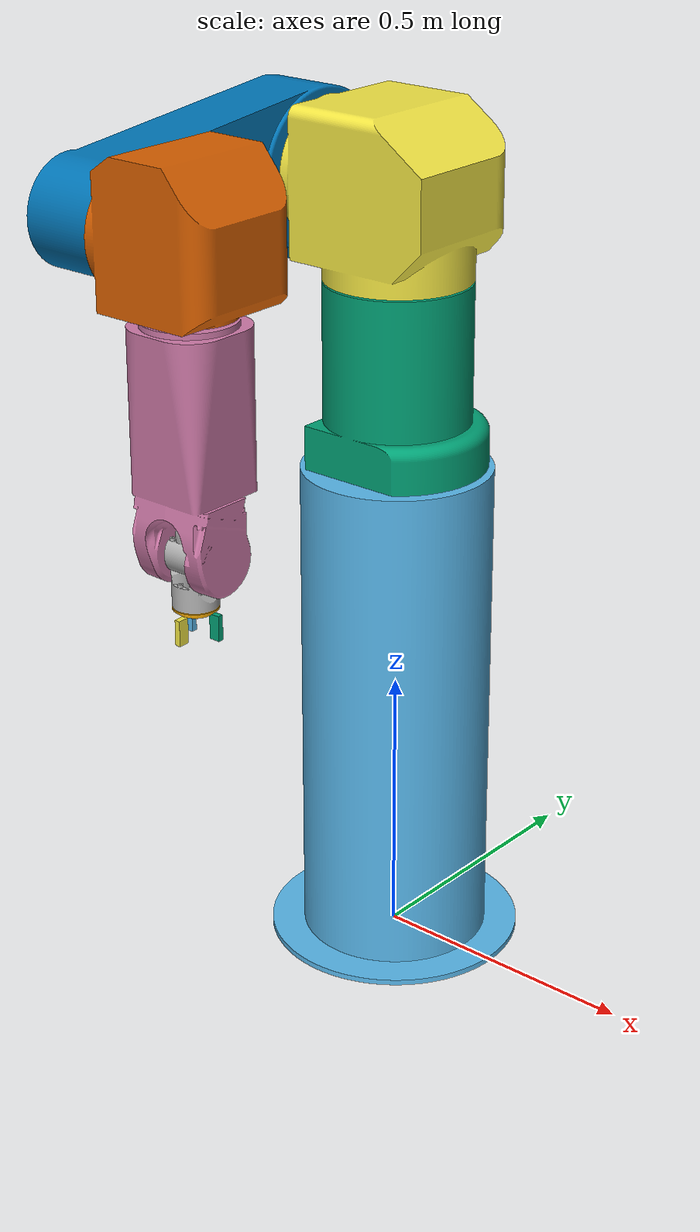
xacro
<?xml version="1.0"?>
<!-- Revolute-Revolute Manipulator -->
<robot name="rx90" xmlns:xacro="http://www.ros.org/wiki/xacro">

  <!-- Constants for robot dimensions -->

  <!-- Import all Gazebo-customization elements, including Gazebo colors -->
  <xacro:include filename="$(find rx90_description)/urdf/rx90.gazebo" />
  <!-- Import Rviz colors -->
  <xacro:include filename="$(find rx90_description)/urdf/materials.xacro" />

  <!-- Used for fixing robot to Gazebo 'base_link' -->
  <link name="world"/>

<!--BRAZOOOOOOOOOOOOOOOOOOOO-->

<!-- Joint 0 -->
   <link name="RIGHT/RX90_BARREL">
      <visual>
         <geometry>
            <mesh filename="package://rx90_description/meshes/stl/RX-90_BARREL.stl" scale="0.001 0.001 0.001" />
         </geometry>
          <origin rpy="${pi/2} 0 0" xyz="0 0 0" />
      </visual>
      <collision>
        <origin rpy="${pi/2} 0 0" xyz="0 0 0" />
            <geometry>
              <mesh filename="package://rx90_description/meshes/stl/RX-90_BARREL.stl" scale="0.001 0.001 0.001" />
            </geometry>
       </collision>
       <selfCollide>true</selfCollide>
	<inertial>
        <origin xyz="0 0 0" rpy="0 0 0" />
        <mass value="1" />
        <inertia
          ixx="1.0" ixy="0.0" ixz="0.0"
          iyy="1.0" iyz="0.0"
          izz="1.0" />
    </inertial>
   </link>
   <joint name="RIGHT/RX90_BARREL_JOINT" type="fixed">
      <parent link="world" />
      <child link="RIGHT/RX90_BARREL" />
      <origin rpy="0 0 0" xyz="0 0 0" />
   </joint>

    <link name="RIGHT/RX90_BASE">
       <visual>
	<origin rpy="${pi/2} 0 0" xyz="0 0 0" />
          <geometry>
             <mesh filename="package://rx90_description/meshes/stl/RX-90_BASE.stl" scale="0.001 0.001 0.001" />
          </geometry>
       </visual>
	<collision>
        <origin rpy="${pi/2} 0 0" xyz="0 0 0" />
            <geometry>
              <mesh filename="package://rx90_description/meshes/stl/RX-90_BASE.stl" scale="0.001 0.001 0.001" />
            </geometry>
       </collision>
       <selfCollide>true</selfCollide>
	<inertial>
        <origin xyz="0 0 0" rpy="0 0 0" />
        <mass value="1" />
        <inertia
          ixx="1.0" ixy="0.0" ixz="0.0"
          iyy="1.0" iyz="0.0"
          izz="1.0" />
    </inertial>
    </link>
    <joint name="RIGHT/RX90_BASE_JOINT" type="fixed">
       <parent link="RIGHT/RX90_BARREL" />
       <child link="RIGHT/RX90_BASE" />
       <origin rpy="0 0 0" xyz="0 0 1.005" />
    </joint>

    <link name="RIGHT/RX90_SHOULDER">
       <visual>
	<origin rpy="0 ${-pi/2} ${pi/2}" xyz="0.122 0 0" />
          <geometry>
             <mesh filename="package://rx90_description/meshes/stl/RX-90_SHOULDER.stl" scale="0.001 0.001 0.001" />
          </geometry>
       </visual>
	<collision>
        <origin rpy="0 ${-pi/2} ${pi/2}" xyz="0.122 0 0" />
            <geometry>
              <mesh filename="package://rx90_description/meshes/stl/RX-90_SHOULDER.stl" scale="0.001 0.001 0.001" />
            </geometry>
       </collision>
       <selfCollide>true</selfCollide>
	<inertial>
        <origin xyz="0 0 0" rpy="0 0 0" />
        <mass value="1" />
        <inertia
          ixx="1.0" ixy="0.0" ixz="0.0"
          iyy="1.0" iyz="0.0"
          izz="1.0" />
    </inertial>
    </link>
    <joint name="RIGHT/RX90_SHOULDER_JOINT" type="continuous">
       <parent link="RIGHT/RX90_BASE" />
       <child link="RIGHT/RX90_SHOULDER" />
       <origin rpy="0 ${pi/2} 0" xyz="0 0 0.41" />
    </joint>

<link name="RIGHT/RX90_ARM">
       <visual>
	<origin rpy="0 0 ${pi/2}" xyz="0 0 0" />
          <geometry>
             <mesh filename="package://rx90_description/meshes/stl/RX-90_ARM.stl" scale="0.001 0.001 0.001" />
          </geometry>
       </visual>
	<collision>
        <origin rpy="0 0 ${pi/2}" xyz="0 0 0" />
            <geometry>
              <mesh filename="package://rx90_description/meshes/stl/RX-90_ARM.stl" scale="0.001 0.001 0.001" />
            </geometry>
       </collision>
       <selfCollide>true</selfCollide>
	<inertial>
        <origin xyz="0 0 0" rpy="0 0 0" />
        <mass value="1" />
        <inertia
          ixx="1.0" ixy="0.0" ixz="0.0"
          iyy="1.0" iyz="0.0"
          izz="1.0" />
    </inertial>
    </link>
    <joint name="RIGHT/RX90_ARM_JOINT" type="continuous">
       <parent link="RIGHT/RX90_SHOULDER" />
       <child link="RIGHT/RX90_ARM" />
       <origin rpy="0 ${pi/2} ${pi/2}" xyz="0 0 -0.301" />
    </joint>

    <link name="RIGHT/RX90_ELBOW">
       <visual>
	<origin rpy="${-pi/2} ${-pi/2} ${-pi/2}" xyz="-0.021 0.14 0" />
          <geometry>
             <mesh filename="package://rx90_description/meshes/stl/RX-90_ELBOW.stl" scale="0.001 0.001 0.001" />
          </geometry>
       </visual>
	<collision>
        <origin rpy="${-pi/2} ${-pi/2} ${-pi/2}" xyz="-0.021 0.14 0" />
            <geometry>
              <mesh filename="package://rx90_description/meshes/stl/RX-90_ELBOW.stl" scale="0.001 0.001 0.001" />
            </geometry>
       </collision>
       <selfCollide>true</selfCollide>
	<inertial>
        <origin xyz="0 0 0" rpy="0 0 0" />
        <mass value="1" />
        <inertia
          ixx="1.0" ixy="0.0" ixz="0.0"
          iyy="1.0" iyz="0.0"
          izz="1.0" />
    </inertial>
    </link>
    <joint name="RIGHT/RX90_ELBOW_JOINT" type="continuous">
       <parent link="RIGHT/RX90_ARM" />
       <child link="RIGHT/RX90_ELBOW" />
       <origin rpy="0 0 0" xyz="-0.255 0 -0.46" />
    </joint>

  <link name="RIGHT/RX90_FOREARM">
       <visual>
	<origin rpy="${pi} ${-pi/2} 0" xyz="0.355 0.1 -0.05" />
          <geometry>
             <mesh filename="package://rx90_description/meshes/stl/RX-90_FOREARM.stl" scale="0.001 0.001 0.001" />
          </geometry>
       </visual>
	<collision>
        <origin rpy="${pi} ${-pi/2} 0" xyz="0.355 0.1 -0.05" />
            <geometry>
              <mesh filename="package://rx90_description/meshes/stl/RX-90_FOREARM.stl" scale="0.001 0.001 0.001" />
            </geometry>
       </collision>
       <selfCollide>true</selfCollide>
	<inertial>
        <origin xyz="0 0 0" rpy="0 0 0" />
        <mass value="1" />
        <inertia
          ixx="1.0" ixy="0.0" ixz="0.0"
          iyy="1.0" iyz="0.0"
          izz="1.0" />
    </inertial>
    </link>
    <joint name="RIGHT/RX90_FOREARM_JOINT" type="continuous">
       <parent link="RIGHT/RX90_ELBOW" />
       <child link="RIGHT/RX90_FOREARM" />
       <origin rpy="0 0 ${-pi/2}" xyz="0 0 0" />
    </joint>

      <link name="RIGHT/RX90_WRIST">
       <visual>
	<origin rpy="${pi/2} 0 ${-pi/2}" xyz="-0.007 0 -0.01" />
          <geometry>
             <mesh filename="package://rx90_description/meshes/stl/RX-90_WRIST.stl" scale="0.001 0.001 0.001" />
          </geometry>
       </visual>
	<collision>
        <origin rpy="${pi/2} 0 ${-pi/2}" xyz="-0.007 0 -0.01" />
            <geometry>
              <mesh filename="package://rx90_description/meshes/stl/RX-90_WRIST.stl" scale="0.001 0.001 0.001" />
            </geometry>
       </collision>
       <selfCollide>true</selfCollide>
	<inertial>
        <origin xyz="0 0 0" rpy="0 0 0" />
        <mass value="1" />
        <inertia
          ixx="1.0" ixy="0.0" ixz="0.0"
          iyy="1.0" iyz="0.0"
          izz="1.0" />
    </inertial>
    </link>
    <joint name="RIGHT/RX90_WRIST_JOINT" type="continuous">
       <parent link="RIGHT/RX90_FOREARM" />
       <child link="RIGHT/RX90_WRIST" />
       <origin rpy="0 0 ${pi/2}" xyz="0.52 0 0" />
    </joint>

          <link name="RIGHT/RX90_FLANGE">
       <visual>
	<origin rpy="0 ${pi/2} 0" xyz="0 0 0" />
          <geometry>
             <mesh filename="package://rx90_description/meshes/stl/RX-90_FLANGE.stl" scale="0.001 0.001 0.001" />
          </geometry>
       </visual>
	<collision>
        <origin rpy="0 ${pi/2} 0" xyz="0 0 -0.009" />
            <geometry>
              <mesh filename="package://rx90_description/meshes/stl/RX-90_FLANGE.stl" scale="0.001 0.001 0.001" />
            </geometry>
       </collision>
       <selfCollide>true</selfCollide>
	<inertial>
        <origin xyz="0 0 0" rpy="0 0 0" />
        <mass value="1" />
        <inertia
          ixx="1.0" ixy="0.0" ixz="0.0"
          iyy="1.0" iyz="0.0"
          izz="1.0" />
    </inertial>
    </link>
    <joint name="RIGHT/RX90_FLANGE_JOINT" type="continuous">
       <parent link="RIGHT/RX90_WRIST" />
       <child link="RIGHT/RX90_FLANGE" />
       <origin rpy="0 0 ${-pi/2}" xyz="-0.006 -0.1015 -0.009" />
    </joint>

          <link name="RIGHT/RX90_LGRIPPER">
       <visual>
	<origin rpy="0 0 0" xyz="0 0 0" />
          <geometry>
            <box size="0.02 0.045 0.01"/>
          </geometry>
       </visual>
	<collision>
        <origin rpy="0 0 0" xyz="0 0 0" />
            <geometry>
              <box size="0.02 0.045 0.01"/>
            </geometry>
       </collision>
       <selfCollide>true</selfCollide>
	<inertial>
        <origin xyz="0 0 0" rpy="0 0 0" />
        <mass value="1" />
        <inertia
          ixx="1.0" ixy="0.0" ixz="0.0"
          iyy="1.0" iyz="0.0"
          izz="1.0" />
    </inertial>
    </link>
    <joint name="RIGHT/RX90_LGRIPPER_JOINT" type="prismatic">
    <limit effort="1000.0" lower="0" upper="0.1" velocity="0.5"/>
       <parent link="RIGHT/RX90_FLANGE" />
       <child link="RIGHT/RX90_LGRIPPER" />
       <origin rpy="0 0 ${-pi/2}" xyz="0.025 0.03 0.015" />
    </joint>

 <link name="RIGHT/RX90_RGRIPPER">
       <visual>
	<origin rpy="0 0 0" xyz="0 0 0" />
          <geometry>
            <box size="0.02 0.045 0.01"/>
          </geometry>
       </visual>
	<collision>
        <origin rpy="0 0 0" xyz="0 0 0" />
            <geometry>
              <box size="0.02 0.045 0.01"/>
            </geometry>
       </collision>
       <selfCollide>true</selfCollide>
	<inertial>
        <origin xyz="0 0 0" rpy="0 0 0" />
        <mass value="1" />
        <inertia
          ixx="1.0" ixy="0.0" ixz="0.0"
          iyy="1.0" iyz="0.0"
          izz="1.0" />
    </inertial>
    </link>
    <joint name="RIGHT/RX90_RGRIPPER_JOINT" type="prismatic">
    <limit effort="1000.0" lower="-0.1" upper="0" velocity="0.5"/>
       <parent link="RIGHT/RX90_FLANGE" />
       <child link="RIGHT/RX90_RGRIPPER" />
       <origin rpy="0 0 ${-pi/2}" xyz="0.025 -0.03 0.015" />
    </joint>

     <link name="RIGHT/RX90_MGRIPPER">
       <visual>
	<origin rpy="0 0 0" xyz="0 0 0" />
          <geometry>
            <box size="0.02 0.045 0.01"/>
          </geometry>
       </visual>
	<collision>
        <origin rpy="0 0 0" xyz="0 0 0" />
            <geometry>
              <box size="0.02 0.045 0.01"/>
            </geometry>
       </collision>
       <selfCollide>true</selfCollide>
	<inertial>
        <origin xyz="0 0 0" rpy="0 0 0" />
        <mass value="1" />
        <inertia
          ixx="1.0" ixy="0.0" ixz="0.0"
          iyy="1.0" iyz="0.0"
          izz="1.0" />
    </inertial>
    </link>
    <joint name="RIGHT/RX90_MGRIPPER_JOINT" type="prismatic">
    <limit effort="1000.0" lower="-0.05" upper="0" velocity="0.5"/>
       <parent link="RIGHT/RX90_FLANGE" />
       <child link="RIGHT/RX90_MGRIPPER" />
       <origin rpy="0 ${pi/2} ${-pi/2}" xyz="0.025 0 -0.035" />
    </joint>

<!--LEFTTTTTTTTTTTTTTTTTTTTTTTTTTTTTTTTTTTTTTTTTTTTTTTTTTTTTT-->
<link name="LEFT/RX90_BARREL">
      <visual>
         <geometry>
            <mesh filename="package://rx90_description/meshes/stl/RX-90_BARREL.stl" scale="0.001 0.001 0.001" />
         </geometry>
          <origin rpy="${pi/2} 0 0" xyz="0 0 0" />
      </visual>
      <collision>
        <origin rpy="${pi/2} 0 0" xyz="0 0 0" />
            <geometry>
              <mesh filename="package://rx90_description/meshes/stl/RX-90_BARREL.stl" scale="0.001 0.001 0.001" />
            </geometry>
       </collision>
       <selfCollide>true</selfCollide>
	<inertial>
        <origin xyz="0 0 0" rpy="0 0 0" />
        <mass value="1" />
        <inertia
          ixx="1.0" ixy="0.0" ixz="0.0"
          iyy="1.0" iyz="0.0"
          izz="1.0" />
    </inertial>
   </link>
   <joint name="LEFT/RX90_BARREL_JOINT" type="fixed">
      <parent link="world" />
      <child link="LEFT/RX90_BARREL" />
      <origin rpy="0 0 0" xyz="0 0 0" />
   </joint>

    <link name="LEFT/RX90_BASE">
       <visual>
	<origin rpy="${pi/2} 0 0" xyz="0 0 0" />
          <geometry>
             <mesh filename="package://rx90_description/meshes/stl/RX-90_BASE.stl" scale="0.001 0.001 0.001" />
          </geometry>
       </visual>
	<collision>
        <origin rpy="${pi/2} 0 0" xyz="0 0 0" />
            <geometry>
              <mesh filename="package://rx90_description/meshes/stl/RX-90_BASE.stl" scale="0.001 0.001 0.001" />
            </geometry>
       </collision>
       <selfCollide>true</selfCollide>
	<inertial>
        <origin xyz="0 0 0" rpy="0 0 0" />
        <mass value="1" />
        <inertia
          ixx="1.0" ixy="0.0" ixz="0.0"
          iyy="1.0" iyz="0.0"
          izz="1.0" />
    </inertial>
    </link>
    <joint name="LEFT/RX90_BASE_JOINT" type="fixed">
       <parent link="LEFT/RX90_BARREL" />
       <child link="LEFT/RX90_BASE" />
       <origin rpy="0 0 0" xyz="0 0 1.005" />
    </joint>

    <link name="LEFT/RX90_SHOULDER">
       <visual>
	<origin rpy="0 ${-pi/2} ${pi/2}" xyz="0.122 0 0" />
          <geometry>
             <mesh filename="package://rx90_description/meshes/stl/RX-90_SHOULDER.stl" scale="0.001 0.001 0.001" />
          </geometry>
       </visual>
	<collision>
        <origin rpy="0 ${-pi/2} ${pi/2}" xyz="0.122 0 0" />
            <geometry>
              <mesh filename="package://rx90_description/meshes/stl/RX-90_SHOULDER.stl" scale="0.001 0.001 0.001" />
            </geometry>
       </collision>
       <selfCollide>true</selfCollide>
	<inertial>
        <origin xyz="0 0 0" rpy="0 0 0" />
        <mass value="1" />
        <inertia
          ixx="1.0" ixy="0.0" ixz="0.0"
          iyy="1.0" iyz="0.0"
          izz="1.0" />
    </inertial>
    </link>
    <joint name="LEFT/RX90_SHOULDER_JOINT" type="continuous">
       <parent link="LEFT/RX90_BASE" />
       <child link="LEFT/RX90_SHOULDER" />
       <origin rpy="0 ${pi/2} 0" xyz="0 0 0.41" />
    </joint>

<link name="LEFT/RX90_ARM">
       <visual>
	<origin rpy="0 0 ${pi/2}" xyz="0 0 0" />
          <geometry>
             <mesh filename="package://rx90_description/meshes/stl/RX-90_ARM.stl" scale="0.001 0.001 0.001" />
          </geometry>
       </visual>
	<collision>
        <origin rpy="0 0 ${pi/2}" xyz="0 0 0" />
            <geometry>
              <mesh filename="package://rx90_description/meshes/stl/RX-90_ARM.stl" scale="0.001 0.001 0.001" />
            </geometry>
       </collision>
       <selfCollide>true</selfCollide>
	<inertial>
        <origin xyz="0 0 0" rpy="0 0 0" />
        <mass value="1" />
        <inertia
          ixx="1.0" ixy="0.0" ixz="0.0"
          iyy="1.0" iyz="0.0"
          izz="1.0" />
    </inertial>
    </link>
    <joint name="LEFT/RX90_ARM_JOINT" type="continuous">
       <parent link="LEFT/RX90_SHOULDER" />
       <child link="LEFT/RX90_ARM" />
       <origin rpy="0 ${pi/2} ${pi/2}" xyz="0 0 -0.301" />
    </joint>

    <link name="LEFT/RX90_ELBOW">
       <visual>
	<origin rpy="${-pi/2} ${-pi/2} ${-pi/2}" xyz="-0.021 0.14 0" />
          <geometry>
             <mesh filename="package://rx90_description/meshes/stl/RX-90_ELBOW.stl" scale="0.001 0.001 0.001" />
          </geometry>
       </visual>
	<collision>
        <origin rpy="${-pi/2} ${-pi/2} ${-pi/2}" xyz="-0.021 0.14 0" />
            <geometry>
              <mesh filename="package://rx90_description/meshes/stl/RX-90_ELBOW.stl" scale="0.001 0.001 0.001" />
            </geometry>
       </collision>
       <selfCollide>true</selfCollide>
	<inertial>
        <origin xyz="0 0 0" rpy="0 0 0" />
        <mass value="1" />
        <inertia
          ixx="1.0" ixy="0.0" ixz="0.0"
          iyy="1.0" iyz="0.0"
          izz="1.0" />
    </inertial>
    </link>
    <joint name="LEFT/RX90_ELBOW_JOINT" type="continuous">
       <parent link="LEFT/RX90_ARM" />
       <child link="LEFT/RX90_ELBOW" />
       <origin rpy="0 0 0" xyz="-0.255 0 -0.46" />
    </joint>

  <link name="LEFT/RX90_FOREARM">
       <visual>
	<origin rpy="${pi} ${-pi/2} 0" xyz="0.355 0.1 -0.05" />
          <geometry>
             <mesh filename="package://rx90_description/meshes/stl/RX-90_FOREARM.stl" scale="0.001 0.001 0.001" />
          </geometry>
       </visual>
	<collision>
        <origin rpy="${pi} ${-pi/2} 0" xyz="0.355 0.1 -0.05" />
            <geometry>
              <mesh filename="package://rx90_description/meshes/stl/RX-90_FOREARM.stl" scale="0.001 0.001 0.001" />
            </geometry>
       </collision>
       <selfCollide>true</selfCollide>
	<inertial>
        <origin xyz="0 0 0" rpy="0 0 0" />
        <mass value="1" />
        <inertia
          ixx="1.0" ixy="0.0" ixz="0.0"
          iyy="1.0" iyz="0.0"
          izz="1.0" />
    </inertial>
    </link>
    <joint name="LEFT/RX90_FOREARM_JOINT" type="continuous">
       <parent link="LEFT/RX90_ELBOW" />
       <child link="LEFT/RX90_FOREARM" />
       <origin rpy="0 0 ${-pi/2}" xyz="0 0 0" />
    </joint>

      <link name="LEFT/RX90_WRIST">
       <visual>
	<origin rpy="${pi/2} 0 ${-pi/2}" xyz="-0.007 0 -0.01" />
          <geometry>
             <mesh filename="package://rx90_description/meshes/stl/RX-90_WRIST.stl" scale="0.001 0.001 0.001" />
          </geometry>
       </visual>
	<collision>
        <origin rpy="${pi/2} 0 ${-pi/2}" xyz="-0.007 0 -0.01" />
            <geometry>
              <mesh filename="package://rx90_description/meshes/stl/RX-90_WRIST.stl" scale="0.001 0.001 0.001" />
            </geometry>
       </collision>
       <selfCollide>true</selfCollide>
	<inertial>
        <origin xyz="0 0 0" rpy="0 0 0" />
        <mass value="1" />
        <inertia
          ixx="1.0" ixy="0.0" ixz="0.0"
          iyy="1.0" iyz="0.0"
          izz="1.0" />
    </inertial>
    </link>
    <joint name="LEFT/RX90_WRIST_JOINT" type="continuous">
       <parent link="LEFT/RX90_FOREARM" />
       <child link="LEFT/RX90_WRIST" />
       <origin rpy="0 0 ${pi/2}" xyz="0.52 0 0" />
    </joint>

          <link name="LEFT/RX90_FLANGE">
       <visual>
	<origin rpy="0 ${pi/2} 0" xyz="0 0 0" />
          <geometry>
             <mesh filename="package://rx90_description/meshes/stl/RX-90_FLANGE.stl" scale="0.001 0.001 0.001" />
          </geometry>
       </visual>
	<collision>
        <origin rpy="0 ${pi/2} 0" xyz="0 0 -0.009" />
            <geometry>
              <mesh filename="package://rx90_description/meshes/stl/RX-90_FLANGE.stl" scale="0.001 0.001 0.001" />
            </geometry>
       </collision>
       <selfCollide>true</selfCollide>
	<inertial>
        <origin xyz="0 0 0" rpy="0 0 0" />
        <mass value="1" />
        <inertia
          ixx="1.0" ixy="0.0" ixz="0.0"
          iyy="1.0" iyz="0.0"
          izz="1.0" />
    </inertial>
    </link>
    <joint name="LEFT/RX90_FLANGE_JOINT" type="continuous">
       <parent link="LEFT/RX90_WRIST" />
       <child link="LEFT/RX90_FLANGE" />
       <origin rpy="0 0 ${-pi/2}" xyz="-0.006 -0.1015 -0.009" />
    </joint>

          <link name="LEFT/RX90_LGRIPPER">
       <visual>
	<origin rpy="0 0 0" xyz="0 0 0" />
          <geometry>
            <box size="0.02 0.045 0.01"/>
          </geometry>
       </visual>
	<collision>
        <origin rpy="0 0 0" xyz="0 0 0" />
            <geometry>
              <box size="0.02 0.045 0.01"/>
            </geometry>
       </collision>
       <selfCollide>true</selfCollide>
	<inertial>
        <origin xyz="0 0 0" rpy="0 0 0" />
        <mass value="1" />
        <inertia
          ixx="1.0" ixy="0.0" ixz="0.0"
          iyy="1.0" iyz="0.0"
          izz="1.0" />
    </inertial>
    </link>
    <joint name="LEFT/RX90_LGRIPPER_JOINT" type="prismatic">
    <limit effort="1000.0" lower="0" upper="0.1" velocity="0.5"/>
       <parent link="LEFT/RX90_FLANGE" />
       <child link="LEFT/RX90_LGRIPPER" />
       <origin rpy="0 0 ${-pi/2}" xyz="0.025 0.03 0.015" />
    </joint>

 <link name="LEFT/RX90_RGRIPPER">
       <visual>
	<origin rpy="0 0 0" xyz="0 0 0" />
          <geometry>
            <box size="0.02 0.045 0.01"/>
          </geometry>
       </visual>
	<collision>
        <origin rpy="0 0 0" xyz="0 0 0" />
            <geometry>
              <box size="0.02 0.045 0.01"/>
            </geometry>
       </collision>
       <selfCollide>true</selfCollide>
	<inertial>
        <origin xyz="0 0 0" rpy="0 0 0" />
        <mass value="1" />
        <inertia
          ixx="1.0" ixy="0.0" ixz="0.0"
          iyy="1.0" iyz="0.0"
          izz="1.0" />
    </inertial>
    </link>
    <joint name="LEFT/RX90_RGRIPPER_JOINT" type="prismatic">
    <limit effort="1000.0" lower="-0.1" upper="0" velocity="0.5"/>
       <parent link="LEFT/RX90_FLANGE" />
       <child link="LEFT/RX90_RGRIPPER" />
       <origin rpy="0 0 ${-pi/2}" xyz="0.025 -0.03 0.015" />
    </joint>

     <link name="LEFT/RX90_MGRIPPER">
       <visual>
	<origin rpy="0 0 0" xyz="0 0 0" />
          <geometry>
            <box size="0.02 0.045 0.01"/>
          </geometry>
       </visual>
	<collision>
        <origin rpy="0 0 0" xyz="0 0 0" />
            <geometry>
              <box size="0.02 0.045 0.01"/>
            </geometry>
       </collision>
       <selfCollide>true</selfCollide>
	<inertial>
        <origin xyz="0 0 0" rpy="0 0 0" />
        <mass value="1" />
        <inertia
          ixx="1.0" ixy="0.0" ixz="0.0"
          iyy="1.0" iyz="0.0"
          izz="1.0" />
    </inertial>
    </link>
    <joint name="LEFT/RX90_MGRIPPER_JOINT" type="prismatic">
    <limit effort="1000.0" lower="-0.05" upper="0" velocity="0.5"/>
       <parent link="LEFT/RX90_FLANGE" />
       <child link="LEFT/RX90_MGRIPPER" />
       <origin rpy="0 ${pi/2} ${-pi/2}" xyz="0.025 0 -0.035" />
    </joint>

<!--BRAZOOOOOOOOOOOOOOOOOOOOooooooooooooooooooooooooooooooooooooooo-->

  <!-- Base Link -->

<!--TRANSMISION BRAZO-->

<transmission name="tran_RIGHT/RX90_SHOULDER_JOINT">
    <type>transmission_interface/SimpleTransmission</type>
    <joint name="RIGHT/RX90_SHOULDER_JOINT">
      <hardwareInterface>hardware_interface/EffortJointInterface</hardwareInterface>
    </joint>
    <actuator name="motor_RIGHT/RX90_SHOULDER_JOINT">
      <hardwareInterface>hardware_interface/EffortJointInterface</hardwareInterface>
      <mechanicalReduction>1</mechanicalReduction>
    </actuator>
  </transmission>

<transmission name="tran_RIGHT/RX90_ARM_JOINT">
    <type>transmission_interface/SimpleTransmission</type>
    <joint name="RIGHT/RX90_ARM_JOINT">
      <hardwareInterface>hardware_interface/EffortJointInterface</hardwareInterface>
    </joint>
    <actuator name="motor_RIGHT/RX90_ARM_JOINT">
      <hardwareInterface>hardware_interface/EffortJointInterface</hardwareInterface>
      <mechanicalReduction>1</mechanicalReduction>
    </actuator>
  </transmission>

  <transmission name="tran_RIGHT/RX90_ELBOW_JOINT">
    <type>transmission_interface/SimpleTransmission</type>
    <joint name="RIGHT/RX90_ELBOW_JOINT">
      <hardwareInterface>hardware_interface/EffortJointInterface</hardwareInterface>
    </joint>
    <actuator name="motor_RIGHT/RX90_ELBOW_JOINT">
      <hardwareInterface>hardware_interface/EffortJointInterface</hardwareInterface>
      <mechanicalReduction>1</mechanicalReduction>
    </actuator>
  </transmission>

  <transmission name="tran_RIGHT/RX90_FOREARM_JOINT">
    <type>transmission_interface/SimpleTransmission</type>
    <joint name="RIGHT/RX90_FOREARM_JOINT">
      <hardwareInterface>hardware_interface/EffortJointInterface</hardwareInterface>
    </joint>
    <actuator name="motor_RIGHT/RX90_FOREARM_JOINT">
      <hardwareInterface>hardware_interface/EffortJointInterface</hardwareInterface>
      <mechanicalReduction>1</mechanicalReduction>
    </actuator>
  </transmission>

  <transmission name="tran_RIGHT/RX90_WRIST_JOINT">
    <type>transmission_interface/SimpleTransmission</type>
    <joint name="RIGHT/RX90_WRIST_JOINT">
      <hardwareInterface>hardware_interface/EffortJointInterface</hardwareInterface>
    </joint>
    <actuator name="motor_RIGHT/RX90_WRIST_JOINT">
      <hardwareInterface>hardware_interface/EffortJointInterface</hardwareInterface>
      <mechanicalReduction>1</mechanicalReduction>
    </actuator>
  </transmission>

  <transmission name="tran_RIGHT/RX90_FLANGE_JOINT">
    <type>transmission_interface/SimpleTransmission</type>
    <joint name="RIGHT/RX90_FLANGE_JOINT">
      <hardwareInterface>hardware_interface/EffortJointInterface</hardwareInterface>
    </joint>
    <actuator name="motor_RIGHT/RX90_FLANGE_JOINT">
      <hardwareInterface>hardware_interface/EffortJointInterface</hardwareInterface>
      <mechanicalReduction>1</mechanicalReduction>
    </actuator>
  </transmission>

    <transmission name="tran_RIGHT/RX90_LGRIPPER_JOINT">
    <type>transmission_interface/SimpleTransmission</type>
    <joint name="RIGHT/RX90_LGRIPPER_JOINT">
      <hardwareInterface>hardware_interface/EffortJointInterface</hardwareInterface>
    </joint>
    <actuator name="motor_RIGHT/RX90_LGRIPPER_JOINT">
      <hardwareInterface>hardware_interface/EffortJointInterface</hardwareInterface>
      <mechanicalReduction>1</mechanicalReduction>
    </actuator>
  </transmission>

    <transmission name="tran_RIGHT/RX90_RGRIPPER_JOINT">
    <type>transmission_interface/SimpleTransmission</type>
    <joint name="RIGHT/RX90_RGRIPPER_JOINT">
      <hardwareInterface>hardware_interface/EffortJointInterface</hardwareInterface>
    </joint>
    <actuator name="motor_RIGHT/RX90_RGRIPPER_JOINT">
      <hardwareInterface>hardware_interface/EffortJointInterface</hardwareInterface>
      <mechanicalReduction>1</mechanicalReduction>
    </actuator>
  </transmission>

      <transmission name="tran_RIGHT/RX90_MGRIPPER_JOINT">
    <type>transmission_interface/SimpleTransmission</type>
    <joint name="RIGHT/RX90_MGRIPPER_JOINT">
      <hardwareInterface>hardware_interface/EffortJointInterface</hardwareInterface>
    </joint>
    <actuator name="motor_RIGHT/RX90_MGRIPPER_JOINT">
      <hardwareInterface>hardware_interface/EffortJointInterface</hardwareInterface>
      <mechanicalReduction>1</mechanicalReduction>
    </actuator>
  </transmission>

<!--left transmision-->

<transmission name="tran_LEFT/RX90_SHOULDER_JOINT">
    <type>transmission_interface/SimpleTransmission</type>
    <joint name="LEFT/RX90_SHOULDER_JOINT">
      <hardwareInterface>hardware_interface/EffortJointInterface</hardwareInterface>
    </joint>
    <actuator name="motor_LEFT/RX90_SHOULDER_JOINT">
      <hardwareInterface>hardware_interface/EffortJointInterface</hardwareInterface>
      <mechanicalReduction>1</mechanicalReduction>
    </actuator>
  </transmission>

<transmission name="tran_LEFT/RX90_ARM_JOINT">
    <type>transmission_interface/SimpleTransmission</type>
    <joint name="LEFT/RX90_ARM_JOINT">
      <hardwareInterface>hardware_interface/EffortJointInterface</hardwareInterface>
    </joint>
    <actuator name="motor_LEFT/RX90_ARM_JOINT">
      <hardwareInterface>hardware_interface/EffortJointInterface</hardwareInterface>
      <mechanicalReduction>1</mechanicalReduction>
    </actuator>
  </transmission>

  <transmission name="tran_LEFT/RX90_ELBOW_JOINT">
    <type>transmission_interface/SimpleTransmission</type>
    <joint name="LEFT/RX90_ELBOW_JOINT">
      <hardwareInterface>hardware_interface/EffortJointInterface</hardwareInterface>
    </joint>
    <actuator name="motor_LEFT/RX90_ELBOW_JOINT">
      <hardwareInterface>hardware_interface/EffortJointInterface</hardwareInterface>
      <mechanicalReduction>1</mechanicalReduction>
    </actuator>
  </transmission>

  <transmission name="tran_LEFT/RX90_FOREARM_JOINT">
    <type>transmission_interface/SimpleTransmission</type>
    <joint name="LEFT/RX90_FOREARM_JOINT">
      <hardwareInterface>hardware_interface/EffortJointInterface</hardwareInterface>
    </joint>
    <actuator name="motor_LEFT/RX90_FOREARM_JOINT">
      <hardwareInterface>hardware_interface/EffortJointInterface</hardwareInterface>
      <mechanicalReduction>1</mechanicalReduction>
    </actuator>
  </transmission>

  <transmission name="tran_LEFT/RX90_WRIST_JOINT">
    <type>transmission_interface/SimpleTransmission</type>
    <joint name="LEFT/RX90_WRIST_JOINT">
      <hardwareInterface>hardware_interface/EffortJointInterface</hardwareInterface>
    </joint>
    <actuator name="motor_LEFT/RX90_WRIST_JOINT">
      <hardwareInterface>hardware_interface/EffortJointInterface</hardwareInterface>
      <mechanicalReduction>1</mechanicalReduction>
    </actuator>
  </transmission>

  <transmission name="tran_LEFT/RX90_FLANGE_JOINT">
    <type>transmission_interface/SimpleTransmission</type>
    <joint name="LEFT/RX90_FLANGE_JOINT">
      <hardwareInterface>hardware_interface/EffortJointInterface</hardwareInterface>
    </joint>
    <actuator name="motor_LEFT/RX90_FLANGE_JOINT">
      <hardwareInterface>hardware_interface/EffortJointInterface</hardwareInterface>
      <mechanicalReduction>1</mechanicalReduction>
    </actuator>
  </transmission>

    <transmission name="tran_LEFT/RX90_LGRIPPER_JOINT">
    <type>transmission_interface/SimpleTransmission</type>
    <joint name="LEFT/RX90_LGRIPPER_JOINT">
      <hardwareInterface>hardware_interface/EffortJointInterface</hardwareInterface>
    </joint>
    <actuator name="motor_LEFT/RX90_LGRIPPER_JOINT">
      <hardwareInterface>hardware_interface/EffortJointInterface</hardwareInterface>
      <mechanicalReduction>1</mechanicalReduction>
    </actuator>
  </transmission>

    <transmission name="tran_LEFT/RX90_RGRIPPER_JOINT">
    <type>transmission_interface/SimpleTransmission</type>
    <joint name="LEFT/RX90_RGRIPPER_JOINT">
      <hardwareInterface>hardware_interface/EffortJointInterface</hardwareInterface>
    </joint>
    <actuator name="motor_LEFT/RX90_RGRIPPER_JOINT">
      <hardwareInterface>hardware_interface/EffortJointInterface</hardwareInterface>
      <mechanicalReduction>1</mechanicalReduction>
    </actuator>
  </transmission>

      <transmission name="tran_LEFT/RX90_MGRIPPER_JOINT">
    <type>transmission_interface/SimpleTransmission</type>
    <joint name="LEFT/RX90_MGRIPPER_JOINT">
      <hardwareInterface>hardware_interface/EffortJointInterface</hardwareInterface>
    </joint>
    <actuator name="motor_LEFT/RX90_MGRIPPER_JOINT">
      <hardwareInterface>hardware_interface/EffortJointInterface</hardwareInterface>
      <mechanicalReduction>1</mechanicalReduction>
    </actuator>
  </transmission>

</robot>
